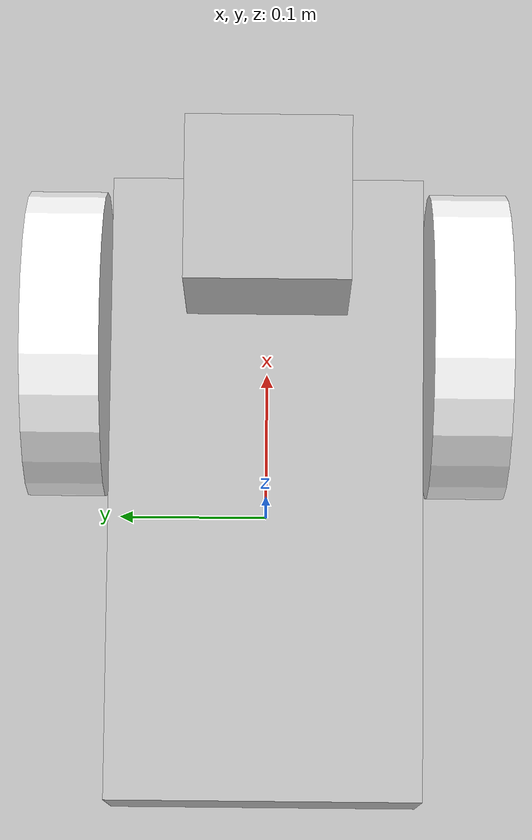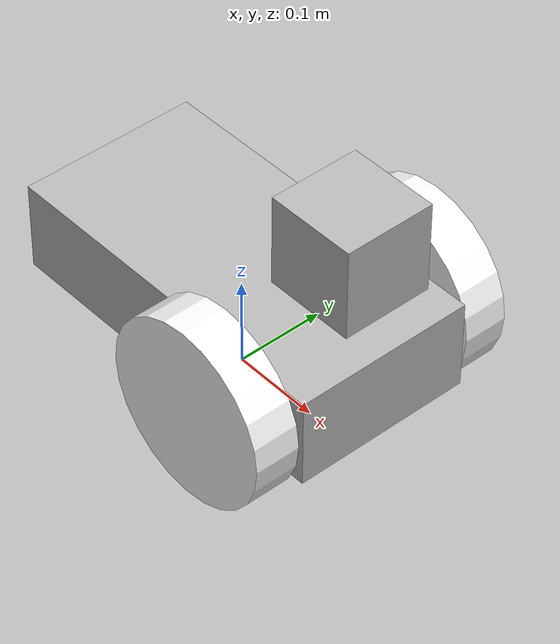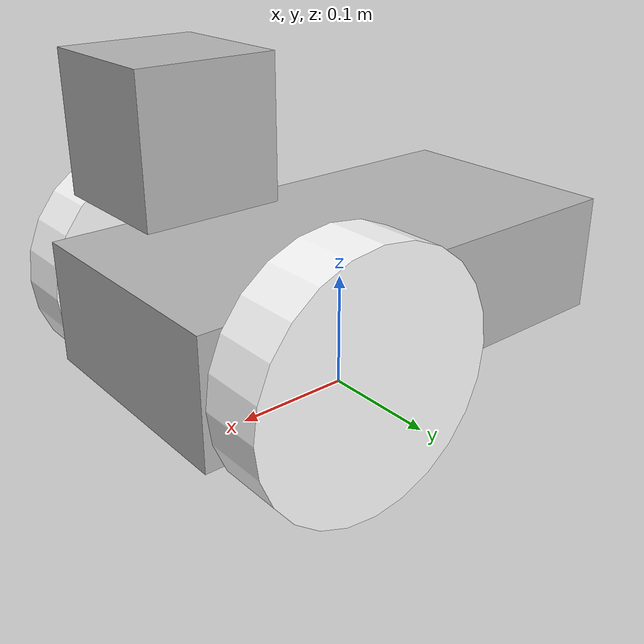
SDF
<?xml version='1.0'?>

<sdf version='1.4'>

  <world name="default">

	    <scene>
      <ambient>0.4 0.4 0.4 1</ambient>
      <background>0.25 0.25 0.25 1</background>
      <shadows>false</shadows>
    </scene>
    <light type="directional" name="some_light">
      <diffuse>0.7 0.7 0.7 0</diffuse>
      <specular>1 1 1 0</specular>
      <direction>-1 -1 -1</direction>
    </light>

   <model name="diffdrive">

  <static>false</static>

   <link name='chassis'>
     <pose>0 0 0.1 0 0 0</pose>

   <inertial>
     <mass>10.0</mass>
     <pose>0.0 0 0.1 0 0 0</pose>
     <inertia>
     <ixx>0.5</ixx>
     <iyy>1.0</iyy>
     <izz>0.1</izz>
     </inertia>
    </inertial>

    <collision name='collision'>
       <geometry>
       <box>
       <size>.4 .2 .1</size>
       </box>
       </geometry>
     </collision>

    <visual name='visual'>
      <pose>0 0 0.0 0 0 0</pose>
      <geometry>
      <box>
      <size>.4 .2 .1</size>
      </box>
      </geometry>
    </visual>

	<collision name='caster_collision'>
	 <pose>-0.15 0 -0.05 0 0 0</pose>
	 <geometry>
	 <sphere>
	 <radius>.05</radius>
	 </sphere>
	 </geometry>

	 <surface>
	 <friction>
	 <ode>
	 <mu>0</mu>
	 <mu2>0</mu2>
	 <slip1>1.0</slip1>
	 <slip2>1.0</slip2>
	 </ode>
	 </friction>
	 </surface>
	 </collision>

	<visual name='caster_visual'>
	 <pose>-0.15 0 -0.05 0 0 0</pose>
	 <geometry>
	 <sphere>
	 <radius>.05</radius>
	 </sphere>
	 </geometry>
	 </visual>

	</link>

<link name="left_wheel">
 <pose>0.1 0.13 0.1 0 1.5707 1.5707</pose>
 <collision name="collision">
 <geometry>
 <cylinder>
 <radius>.1</radius>
 <length>.05</length>
 </cylinder>
 </geometry>
 </collision>
 <visual name="visual">
 <geometry>
 <cylinder>
 <radius>.1</radius>
 <length>.05</length>
 </cylinder>
 </geometry>
 <material>
    <ambient>1 1 1 1</ambient>
    <diffuse>1 1 1 1</diffuse>
    <specular>1 1 1 1</specular>
    <emissive>0 0 0 0</emissive>
 </material>
</visual>
 </link>

<joint type="revolute" name="left_wheel_hinge">
 <pose>0 0 -0.03 0 0 0</pose>
 <child>left_wheel</child>
 <parent>chassis</parent>
 <axis>
 <xyz>0 1 0</xyz>
 </axis>
 </joint>

<link name="right_wheel">
 <pose>0.1 -0.13 0.1 0 1.5707 1.5707</pose>
 <collision name="collision">
 <geometry>
 <cylinder>
 <radius>.1</radius>
 <length>.05</length>
 </cylinder>
 </geometry>
 </collision>
 <visual name="visual">
 <geometry>
 <cylinder>
 <radius>.1</radius>
 <length>.05</length>
 </cylinder>
 </geometry>
 <material>
    <ambient>1 1 1 1</ambient>
    <diffuse>1 1 1 1</diffuse>
    <specular>1 1 1 1</specular>
    <emissive>0 0 0 0</emissive>
 </material>
 </visual>
 </link>

<joint type="revolute" name="right_wheel_hinge">
 <pose>0 0 0.03 0 0 0</pose>
 <child>right_wheel</child>
 <parent>chassis</parent>
 <axis>
 <xyz>0 1 0</xyz>
 </axis>
 </joint>

<plugin name="differential_drive_controller" filename="libgazebo_ros_diff_drive.so">
 <alwaysOn>true</alwaysOn>
 <updateRate>20</updateRate>
 <leftJoint>left_wheel_hinge</leftJoint>
 <rightJoint>right_wheel_hinge</rightJoint>
 <wheelSeparation>0.4</wheelSeparation>
 <wheelDiameter>0.1</wheelDiameter>
 <torque>20</torque>
 <commandTopic>cmd_vel</commandTopic>
 <odometryTopic>odom</odometryTopic>
 <odometryFrame>odom</odometryFrame>
 <robotBaseFrame>base_footprint</robotBaseFrame>
 </plugin>

	<!-- Joint for the Camera and the "optical frame"-->

      <link name='camera_link'>
   	<pose>0.15 0 0.25 0 0 0</pose>
        <visual name='visual'>
          <geometry>
            <box>
              <size>0.1 0.1 0.1</size>
            </box>
          </geometry>
          <material name="white" />
        </visual>
        <sensor name='my_camera' type='camera'>
	  <update_rate>30</update_rate>
          <camera>
            <save enabled="true">
              <path>/tmp/camera_save</path>
            </save>
            <horizontal_fov>1.047</horizontal_fov>
            <image>
              <width>1920</width>
              <height>1080</height>
            </image>
            <clip>
              <near>0.1</near>
              <far>100</far>
            </clip>
          </camera>
	  <always_on>1</always_on>

 	   <!-- Include plugin for Publishing ROS Topics-->
           <plugin name="camera_controller" filename="libgazebo_ros_camera.so">
                <frame_name>camera_link_optical</frame_name>
                <min_depth>0.1</min_depth>
                <max_depth>500</max_depth>
            </plugin>

        </sensor>
    </link>

<joint type="fixed" name="chassis_cam">
   <pose>1 1 1 0 0 0</pose>
   <child>camera_link</child>
 <parent>chassis</parent>
 </joint>

    </model>
    </world>

</sdf>
